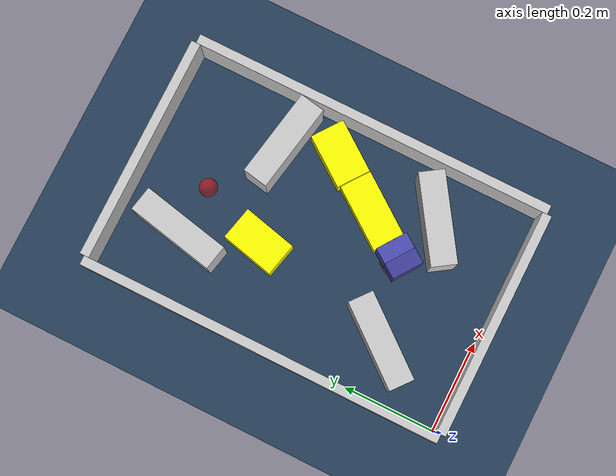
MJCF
<?xml version='1.0' encoding='utf-8'?>
<mujoco model="real_buildable">
  <compiler angle="degree" />
  <option timestep="0.002" integrator="implicitfast" iterations="100" cone="elliptic" />
  <default>
    <geom density="1" />
  </default>
  <asset>
    <texture builtin="gradient" height="3072" rgb1="0.3 0.5 0.7" rgb2="0 0 0" type="skybox" width="512" />
    <texture builtin="checker" height="300" mark="edge" markrgb="0.8 0.8 0.8" name="groundplane" rgb1="0.2 0.3 0.4" rgb2="0.1 0.2 0.3" type="2d" width="300" />
    <material name="groundplane" reflectance="0.2" texrepeat="5 5" texture="groundplane" texuniform="true" />
  </asset>
  <worldbody>
    <light dir="0 0 -1" directional="true" pos="0 0 1.5" />
    <geom name="floor" type="plane" condim="4" friction="0.5 0.005 0.001" material="groundplane" size="0 0 0.05" />
    <body name="walls">
      <geom name="wall_boundary_left" type="box" condim="4" friction="1.0 0.005 0.0001" rgba="0.8 0.8 0.8 1" pos="-0.010000 0.387500 0.050000" euler="0 0 0.000000" size="0.010000 0.397500 0.050000" />
      <geom name="wall_boundary_right" type="box" condim="4" friction="1.0 0.005 0.0001" rgba="0.8 0.8 0.8 1" pos="0.500000 0.387500 0.050000" euler="0 0 0.000000" size="0.010000 0.397500 0.050000" />
      <geom name="wall_boundary_bottom" type="box" condim="4" friction="1.0 0.005 0.0001" rgba="0.8 0.8 0.8 1" pos="0.245000 -0.010000 0.050000" euler="0 0 0.000000" size="0.245000 0.010000 0.050000" />
      <geom name="wall_boundary_top" type="box" condim="4" friction="1.0 0.005 0.0001" rgba="0.8 0.8 0.8 1" pos="0.245000 0.785000 0.050000" euler="0 0 0.000000" size="0.245000 0.010000 0.050000" />
      <geom name="wall_inner_1" type="box" condim="4" friction="1.0 0.005 0.0001" rgba="0.8 0.8 0.8 1" pos="0.112821 0.177057 0.050000" euler="0 0 51.144799" size="0.097500 0.027500 0.050000" />
      <geom name="wall_inner_2" type="box" condim="4" friction="1.0 0.005 0.0001" rgba="0.8 0.8 0.8 1" pos="0.385439 0.183719 0.050000" euler="0 0 33.390875" size="0.097500 0.027500 0.050000" />
      <geom name="wall_inner_3" type="box" condim="4" friction="1.0 0.005 0.0001" rgba="0.8 0.8 0.8 1" pos="0.389000 0.533000 0.050000" euler="0 0 169.700000" size="0.097500 0.027500 0.050000" />
      <geom name="wall_inner_4" type="box" condim="4" friction="1.0 0.005 0.0001" rgba="0.8 0.8 0.8 1" pos="0.133000 0.643000 0.050000" euler="0 0 78.200000" size="0.097500 0.027500 0.050000" />
    </body>
    <body name="car" pos="0.2848756943159641 0.21866389788977342 0.01" quat="0.88691443245519952 0 0 0.46193375012297083">
      <freejoint name="car_freejoint" />
      <inertial pos="0 0 0.0375" mass="0.35" diaginertia="0.000266 0.000266 0.000286" />
      <geom name="front_chassis_collision" type="box" pos="0.0175 0 0.0375" size="0.0175 0.035 0.0325" rgba="0.3 0.3 0.7 1" />
      <geom name="rear_chassis_collision" type="box" pos="-0.0175 0 0.0375" size="0.0175 0.035 0.0325" rgba="0.25 0.25 0.6 1" />
      <geom name="front_marker" type="box" pos="0.034 0 0.0505" size="0.002 0.015 0.01" rgba="1 0.2 0.2 1" contype="0" conaffinity="0" />
      <body name="rear_support_body" pos="-0.03 0 0.0025">
        <joint name="rear_caster_joint" type="ball" damping="0.0001" />
        <inertial pos="0 0 0" mass="0.025" diaginertia="0.000001 0.000001 0.000001" />
        <geom name="rear_support" type="sphere" pos="0 0 0" size="0.0025" friction="0 0 0" rgba="0.7 0.1 0.1 1" />
      </body>
      <body name="front_support_body" pos="0.03 0 0.0025">
        <joint name="front_caster_joint" type="ball" damping="0.0001" />
        <inertial pos="0 0 0" mass="0.025" diaginertia="0.000001 0.000001 0.000001" />
        <geom name="front_support" type="sphere" pos="0 0 0" size="0.0025" friction="0 0 0" rgba="0.1 0.7 0.1 1" />
      </body>
      <body name="left_wheel" pos="0 0.0375 0.015">
        <inertial pos="0 0 0" mass="0.05" diaginertia="0.000003 0.000006 0.000003" />
        <joint name="left_wheel_joint" type="hinge" axis="0 1 0" damping="0.01" armature="0.0001" />
        <geom name="left_wheel_collision" type="cylinder" size="0.015 0.0005" euler="90 0 0" rgba="0.1 0.1 0.1 1" />
      </body>
      <body name="right_wheel" pos="0 -0.0375 0.015">
        <inertial pos="0 0 0" mass="0.05" diaginertia="0.000003 0.000006 0.000003" />
        <joint name="right_wheel_joint" type="hinge" axis="0 1 0" damping="0.01" armature="0.0001" />
        <geom name="right_wheel_collision" type="cylinder" size="0.015 0.0005" euler="90 0 0" rgba="0.1 0.1 0.1 1" />
      </body>
    </body>
    <body name="obstacle_0_movable">
      <geom name="obstacle_0_movable" condim="4" pos="0.34780558874847251 0.31012207104642964 0.02" friction="1 0.005 0.0001" rgba="1 1 0 1" size="0.035000 0.075000 0.020000" type="box" mass="0.1" quat="0.31127555043717636 0 0 0.95031969973269148" />
      <joint type="free" />
    </body>
    <body name="obstacle_1_movable">
      <geom name="obstacle_1_movable" condim="4" pos="0.18599999999999964 0.48999999999999966 0.025000000000000001" friction="1 0.005 0.0001" rgba="1 1 0 1" size="0.037500 0.060000 0.025000" type="box" mass="0.1" quat="0.99327208577939208 0 0 -0.11580398789098709" />
      <joint type="free" />
    </body>
    <body name="obstacle_2_movable">
      <geom name="obstacle_2_movable" condim="4" pos="0.42432691960056224 0.42135245790181569 0.025000000000000001" friction="1 0.005 0.0001" rgba="1 1 0 1" size="0.037500 0.060000 0.025000" type="box" mass="0.1" quat="0.31116292937474138 0 0 0.95035658117515542" />
      <joint type="free" />
    </body>
    <site name="goal" type="sphere" pos="0.245000 0.640000 0.0" size="0.02" rgba="1 0 0 0.5" />
  </worldbody>
  <actuator>
    <velocity name="left_wheel_drive" joint="left_wheel_joint" ctrlrange="-25 25" kv="0.75" forcerange="-0.5 0.5" />
    <velocity name="right_wheel_drive" joint="right_wheel_joint" ctrlrange="-25 25" kv="0.75" forcerange="-0.5 0.5" />
  </actuator>
</mujoco>
